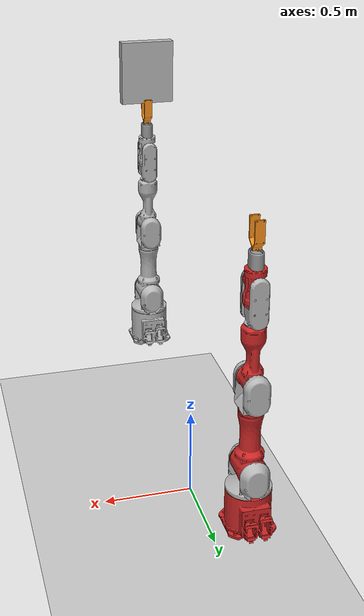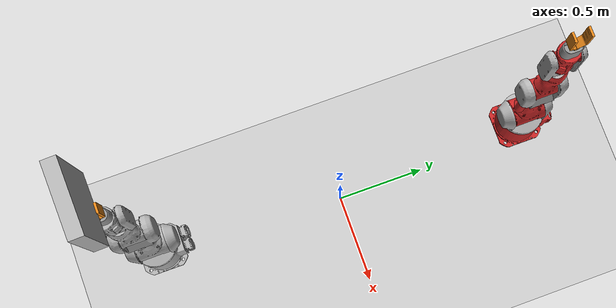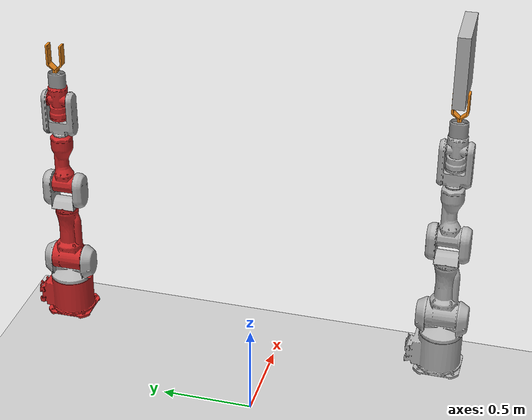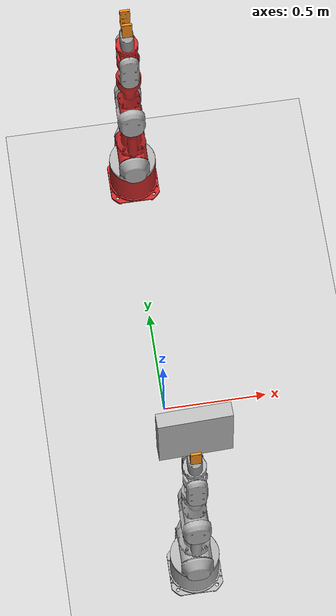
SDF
<sdf version="1.6">
 <world name="default">
  <physics name="default_physics" default="0" type="ode">
   <ode>
    <solver>
     <type>quick</type>
     <iters>20</iters>
     <sor>1</sor>
     <use_dynamic_moi_rescaling>0</use_dynamic_moi_rescaling>
    </solver>
    <constraints>
     <cfm>0</cfm>
     <erp>0.2</erp>
     <contact_max_correcting_vel>100</contact_max_correcting_vel>
     <contact_surface_layer>0</contact_surface_layer>
    </constraints>
   </ode>
   <real_time_update_rate>1000</real_time_update_rate>
   <max_step_size>0.001</max_step_size>
   <real_time_factor>1</real_time_factor>
  </physics>
  <light name="sun" type="directional">
   <pose>0 0 10 0 -0 0</pose>
   <diffuse>0.8 0.8 0.8 1</diffuse>
   <specular>0.2 0.2 0.2 1</specular>
   <attenuation>
    <range>1000</range>
    <constant>0.9</constant>
    <linear>0.01</linear>
    <quadratic>0.001</quadratic>
   </attenuation>
   <direction>-0.5 0.1 -0.9</direction>
  </light>
  <model name="ground_plane">
   <static>1</static>
   <link name="link">
    <collision name="collision">
     <geometry><plane><normal>0 0 1</normal><size>100 100</size></plane></geometry>
     <surface><friction><ode><mu>100</mu><mu2>50</mu2></ode></friction></surface>
    </collision>
    <visual name="visual">
     <cast_shadows>0</cast_shadows>
     <geometry><plane><normal>0 0 1</normal><size>100 100</size></plane></geometry>
     <material>
      <script><uri>file://media/materials/scripts/gazebo.material</uri><name>Gazebo/Grey</name></script>
     </material>
    </visual>
   </link>
  </model>
  <gravity>0 0 -9.81</gravity>
  <magnetic_field>6e-06 2.3e-05 -4.2e-05</magnetic_field>
  <atmosphere type="adiabatic"/>
  <scene><ambient>0.4 0.4 0.4 1</ambient><background>0.7 0.7 0.7 1</background><shadows>1</shadows></scene>
  <audio><device>default</device></audio>
  <spherical_coordinates>
   <surface_model>EARTH_WGS84</surface_model>
   <latitude_deg>0</latitude_deg>
   <longitude_deg>0</longitude_deg>
   <elevation>0</elevation>
   <heading_deg>0</heading_deg>
  </spherical_coordinates>
  <model name="pa10">
   <link name="pa10_1_root_link">
    <pose>0 -1 0 0 -0 0</pose>
    <inertial>
     <pose>0 0 0.025 0 -0 0</pose>
     <mass>2</mass>
     <inertia><ixx>1.00667</ixx><ixy>0</ixy><ixz>0</ixz><iyy>1.00667</iyy><iyz>0</iyz><izz>1.0025</izz></inertia>
    </inertial>
    <collision name="pa10_1_root_link_fixed_joint_lump__pa10_1_base_link_collision">
     <pose>0 0 0 0 -0 3.14</pose>
     <geometry>
      <mesh>
       <scale>1 1 1</scale>
       <uri>/home/michalis/iros_2020_ws/src/PA10/pa10_description/pa10_stl_collision/S1_collision.stl</uri>
      </mesh>
     </geometry>
     <surface><friction><ode><mu>0.5</mu><mu2>0.5</mu2></ode></friction></surface>
    </collision>
    <visual name="pa10_1_root_link_fixed_joint_lump__pa10_1_base_link_visual">
     <pose>0 0 0 0 -0 3.14</pose>
     <geometry>
      <mesh>
       <scale>1 1 1</scale>
       <uri>/home/michalis/iros_2020_ws/src/PA10/pa10_description/pa10_stl/S1.stl</uri>
      </mesh>
     </geometry>
     <material>
      <ambient>0.55 0.85 0.89 1</ambient>
      <diffuse>0.7 0.7 0.7 1</diffuse>
      <specular>0.01 0.01 0.01 1</specular>
      <script><uri>__default__</uri><name>__default__</name></script>
     </material>
    </visual>
   </link>
   <joint name="pa10_1_base_to_root" type="fixed"><child>pa10_1_root_link</child><parent>world</parent></joint>
   <link name="pa10_1_link_shoulder_1">
    <pose>0 -1 0.2 0 -0 0</pose>
    <inertial>
     <pose>0 0 0.117 0 -0 0</pose>
     <mass>0.5</mass>
     <inertia>
      <ixx>0.00139944</ixx>
      <ixy>0</ixy>
      <ixz>0</ixz>
      <iyy>0.00139944</iyy>
      <iyz>0</iyz>
      <izz>0.0016</izz>
     </inertia>
    </inertial>
    <collision name="pa10_1_link_shoulder_1_collision">
     <pose>0 0 0.117 0 -0 0</pose>
     <geometry>
      <mesh>
       <scale>1 1 1</scale>
       <uri>/home/michalis/iros_2020_ws/src/PA10/pa10_description/pa10_stl_collision/S2_collision.stl</uri>
      </mesh>
     </geometry>
    </collision>
    <visual name="pa10_1_link_shoulder_1_visual">
     <pose>0 0 0.117 0 -0 0</pose>
     <geometry>
      <mesh>
       <scale>1 1 1</scale>
       <uri>/home/michalis/iros_2020_ws/src/PA10/pa10_description/pa10_stl/S2.stl</uri>
      </mesh>
     </geometry>
     <material>
      <ambient>0.88 0.88 0.88 1</ambient>
      <diffuse>0.7 0.7 0.7 1</diffuse>
      <specular>0.01 0.01 0.01 1</specular>
      <script><uri>__default__</uri><name>__default__</name></script>
     </material>
    </visual>
   </link>
   <joint name="pa10_1_S1" type="revolute">
    <child>pa10_1_link_shoulder_1</child>
    <parent>pa10_1_root_link</parent>
    <axis>
     <xyz>0 0 1</xyz>
     <limit><lower>-2.96706</lower><upper>2.96706</upper><effort>150</effort><velocity>0.85</velocity></limit>
     <dynamics>
      <damping>0.8</damping>
      <friction>0.1</friction>
      <spring_reference>0</spring_reference>
      <spring_stiffness>0</spring_stiffness>
     </dynamics>
     <use_parent_model_frame>1</use_parent_model_frame>
    </axis>
   </joint>
   <link name="pa10_1_link_shoulder_2">
    <pose>0 -1 0.317 -1.57079 0 0</pose>
    <inertial>
     <pose>0 -0.22 1e-06 -1.57079 -0 3.14159</pose>
     <mass>1</mass>
     <inertia>
      <ixx>0.00266184</ixx>
      <ixy>4.06565e-24</ixy>
      <ixz>-1.48893e-23</ixz>
      <iyy>0.00266183</iyy>
      <iyz>1.53224e-18</iyz>
      <izz>0.001625</izz>
     </inertia>
    </inertial>
    <collision name="pa10_1_link_shoulder_2_collision">
     <pose>0 0 0 -1.57079 -0 3.14159</pose>
     <geometry>
      <mesh>
       <scale>1 1 1</scale>
       <uri>/home/michalis/iros_2020_ws/src/PA10/pa10_description/pa10_stl_collision/S3_collision.stl</uri>
      </mesh>
     </geometry>
     <surface><friction><ode><mu>0.5</mu><mu2>0.5</mu2></ode></friction></surface>
    </collision>
    <visual name="pa10_1_link_shoulder_2_visual">
     <pose>0 0 0 -1.57079 -0 3.14159</pose>
     <geometry>
      <mesh>
       <scale>1 1 1</scale>
       <uri>/home/michalis/iros_2020_ws/src/PA10/pa10_description/pa10_stl/S3.stl</uri>
      </mesh>
     </geometry>
     <material>
      <ambient>0.55 0.85 0.89 1</ambient>
      <diffuse>0.7 0.7 0.7 1</diffuse>
      <specular>0.01 0.01 0.01 1</specular>
      <script><uri>__default__</uri><name>__default__</name></script>
     </material>
    </visual>
   </link>
   <joint name="pa10_1_S2" type="revolute">
    <child>pa10_1_link_shoulder_2</child>
    <parent>pa10_1_link_shoulder_1</parent>
    <axis>
     <xyz>0 1 6e-06</xyz>
     <limit><lower>-1.5708</lower><upper>1.5708</upper><effort>150</effort><velocity>0.85</velocity></limit>
     <dynamics>
      <damping>0.8</damping>
      <friction>0.1</friction>
      <spring_reference>0</spring_reference>
      <spring_stiffness>0</spring_stiffness>
     </dynamics>
     <use_parent_model_frame>1</use_parent_model_frame>
    </axis>
   </joint>
   <link name="pa10_1_link_elbow_1">
    <pose>0 -1 0.634 0 -0 0</pose>
    <inertial>
     <pose>0 0 0.133 0 -0 0</pose>
     <mass>0.5</mass>
     <inertia>
      <ixx>0.00139944</ixx>
      <ixy>0</ixy>
      <ixz>0</ixz>
      <iyy>0.00139944</iyy>
      <iyz>0</iyz>
      <izz>0.0016</izz>
     </inertia>
    </inertial>
    <collision name="pa10_1_link_elbow_1_collision">
     <pose>0 0 0.133 0 -0 0</pose>
     <geometry>
      <mesh>
       <scale>1 1 1</scale>
       <uri>/home/michalis/iros_2020_ws/src/PA10/pa10_description/pa10_stl_collision/E1_collision.stl</uri>
      </mesh>
     </geometry>
     <surface><friction><ode><mu>0.5</mu><mu2>0.5</mu2></ode></friction></surface>
    </collision>
    <visual name="pa10_1_link_elbow_1_visual">
     <pose>0 0 0.133 0 -0 0</pose>
     <geometry>
      <mesh>
       <scale>1 1 1</scale>
       <uri>/home/michalis/iros_2020_ws/src/PA10/pa10_description/pa10_stl/E1.stl</uri>
      </mesh>
     </geometry>
     <material>
      <ambient>0.88 0.88 0.88 1</ambient>
      <diffuse>0.7 0.7 0.7 1</diffuse>
      <specular>0.01 0.01 0.01 1</specular>
      <script><uri>__default__</uri><name>__default__</name></script>
     </material>
    </visual>
   </link>
   <joint name="pa10_1_E1" type="revolute">
    <child>pa10_1_link_elbow_1</child>
    <parent>pa10_1_link_shoulder_2</parent>
    <axis>
     <xyz>0 0 1</xyz>
     <limit><lower>-2.96706</lower><upper>2.96706</upper><effort>150</effort><velocity>1.85</velocity></limit>
     <dynamics>
      <damping>0.8</damping>
      <friction>0.1</friction>
      <spring_reference>0</spring_reference>
      <spring_stiffness>0</spring_stiffness>
     </dynamics>
     <use_parent_model_frame>1</use_parent_model_frame>
    </axis>
   </joint>
   <link name="pa10_1_link_elbow_2">
    <pose>0 -1 0.767 -1.57079 0 0</pose>
    <inertial>
     <pose>0 -0.15 0 1.57079 -0 0</pose>
     <mass>0.5</mass>
     <inertia>
      <ixx>0.0012495</ixx>
      <ixy>0</ixy>
      <ixz>0</ixz>
      <iyy>0.0012495</iyy>
      <iyz>0</iyz>
      <izz>0.000625</izz>
     </inertia>
    </inertial>
    <collision name="pa10_1_link_elbow_2_collision">
     <pose>0 0.003 0 1.57079 -0 0</pose>
     <geometry>
      <mesh>
       <scale>1 1 1</scale>
       <uri>/home/michalis/iros_2020_ws/src/PA10/pa10_description/pa10_stl_collision/E2_collision.stl</uri>
      </mesh>
     </geometry>
     <surface><friction><ode><mu>0.5</mu><mu2>0.5</mu2></ode></friction></surface>
    </collision>
    <visual name="pa10_1_link_elbow_2_visual">
     <pose>0 0.003 0 1.57079 -0 0</pose>
     <geometry>
      <mesh>
       <scale>1 1 1</scale>
       <uri>/home/michalis/iros_2020_ws/src/PA10/pa10_description/pa10_stl/E2.stl</uri>
      </mesh>
     </geometry>
     <material>
      <ambient>0.55 0.85 0.89 1</ambient>
      <diffuse>0.7 0.7 0.7 1</diffuse>
      <specular>0.01 0.01 0.01 1</specular>
      <script><uri>__default__</uri><name>__default__</name></script>
     </material>
    </visual>
   </link>
   <joint name="pa10_1_E2" type="revolute">
    <child>pa10_1_link_elbow_2</child>
    <parent>pa10_1_link_elbow_1</parent>
    <axis>
     <xyz>0 1 6e-06</xyz>
     <limit><lower>-2.26893</lower><upper>2.26893</upper><effort>150</effort><velocity>1.85</velocity></limit>
     <dynamics>
      <damping>0.8</damping>
      <friction>0.1</friction>
      <spring_reference>0</spring_reference>
      <spring_stiffness>0</spring_stiffness>
     </dynamics>
     <use_parent_model_frame>1</use_parent_model_frame>
    </axis>
   </joint>
   <link name="pa10_1_link_wrist_1">
    <pose>0 -1 1.052 0 -0 0</pose>
    <inertial>
     <pose>0 0 0.195 0 -0 0</pose>
     <mass>0.5</mass>
     <inertia>
      <ixx>0.0017368</ixx>
      <ixy>0</ixy>
      <ixz>0</ixz>
      <iyy>0.0017368</iyy>
      <iyz>0</iyz>
      <izz>0.0016</izz>
     </inertia>
    </inertial>
    <collision name="pa10_1_link_wrist_1_collision">
     <pose>0 0 0.195 0 -0 0</pose>
     <geometry>
      <mesh>
       <scale>1 1 1</scale>
       <uri>/home/michalis/iros_2020_ws/src/PA10/pa10_description/pa10_stl_collision/W1_collision.stl</uri>
      </mesh>
     </geometry>
     <surface><friction><ode><mu>0.5</mu><mu2>0.5</mu2></ode></friction></surface>
    </collision>
    <visual name="pa10_1_link_wrist_1_visual">
     <pose>0 0 0.195 0 -0 0</pose>
     <geometry>
      <mesh>
       <scale>1 1 1</scale>
       <uri>/home/michalis/iros_2020_ws/src/PA10/pa10_description/pa10_stl/W1.stl</uri>
      </mesh>
     </geometry>
     <material>
      <ambient>0.88 0.88 0.88 1</ambient>
      <diffuse>0.7 0.7 0.7 1</diffuse>
      <specular>0.01 0.01 0.01 1</specular>
      <script><uri>__default__</uri><name>__default__</name></script>
     </material>
    </visual>
   </link>
   <joint name="pa10_1_W1" type="revolute">
    <child>pa10_1_link_wrist_1</child>
    <parent>pa10_1_link_elbow_2</parent>
    <axis>
     <xyz>0 0 1</xyz>
     <limit><lower>-4.36332</lower><upper>4.36332</upper><effort>150</effort><velocity>1.85</velocity></limit>
     <dynamics>
      <damping>0.8</damping>
      <friction>0.1</friction>
      <spring_reference>0</spring_reference>
      <spring_stiffness>0</spring_stiffness>
     </dynamics>
     <use_parent_model_frame>1</use_parent_model_frame>
    </axis>
   </joint>
   <link name="pa10_1_link_wrist_2">
    <pose>0 -1 1.247 -1.57079 0 0</pose>
    <inertial>
     <pose>0 0 0 1.57079 -0 0</pose>
     <mass>0.5</mass>
     <inertia>
      <ixx>0.000903805</ixx>
      <ixy>0</ixy>
      <ixz>0</ixz>
      <iyy>0.0016</iyy>
      <iyz>0</iyz>
      <izz>0.000903805</izz>
     </inertia>
    </inertial>
    <collision name="pa10_1_link_wrist_2_collision">
     <pose>0 0 0 1.57079 -0 0</pose>
     <geometry>
      <mesh>
       <scale>1 1 1</scale>
       <uri>/home/michalis/iros_2020_ws/src/PA10/pa10_description/pa10_stl_collision/W2_collision.stl</uri>
      </mesh>
     </geometry>
     <surface><friction><ode><mu>0.5</mu><mu2>0.5</mu2></ode></friction></surface>
    </collision>
    <visual name="pa10_1_link_wrist_2_visual">
     <pose>0 0 0 1.57079 -0 0</pose>
     <geometry>
      <mesh>
       <scale>1 1 1</scale>
       <uri>/home/michalis/iros_2020_ws/src/PA10/pa10_description/pa10_stl/W2.stl</uri>
      </mesh>
     </geometry>
     <material>
      <ambient>0.55 0.85 0.89 1</ambient>
      <diffuse>0.7 0.7 0.7 1</diffuse>
      <specular>0.01 0.01 0.01 1</specular>
      <script><uri>__default__</uri><name>__default__</name></script>
     </material>
    </visual>
   </link>
   <joint name="pa10_1_W2" type="revolute">
    <child>pa10_1_link_wrist_2</child>
    <parent>pa10_1_link_wrist_1</parent>
    <axis>
     <xyz>0 1 6e-06</xyz>
     <limit><lower>-2.79253</lower><upper>2.79253</upper><effort>150</effort><velocity>5.65487</velocity></limit>
     <dynamics>
      <damping>0.8</damping>
      <friction>0.1</friction>
      <spring_reference>0</spring_reference>
      <spring_stiffness>0</spring_stiffness>
     </dynamics>
     <use_parent_model_frame>1</use_parent_model_frame>
    </axis>
   </joint>
   <link name="pa10_1_link_wrist_3">
    <pose>0 -1 1.317 0 -0 0</pose>
    <inertial>
     <pose>-0.000109 -3e-06 0.292888 0 -0 0</pose>
     <mass>0.9</mass>
     <inertia>
      <ixx>0.127852</ixx>
      <ixy>-2.39321e-09</ixy>
      <ixz>2.04788e-05</ixz>
      <iyy>0.127852</iyy>
      <iyz>5.69382e-07</iyz>
      <izz>0.10209</izz>
     </inertia>
    </inertial>
    <collision name="pa10_1_link_wrist_3_fixed_joint_lump__common_object_collision">
     <pose>0 0 0.381 1.579 -0 -1.543</pose>
     <geometry><box><size>0.06 0.24 0.25</size></box></geometry>
    </collision>
    <collision name="pa10_1_link_wrist_3_fixed_joint_lump__pa10_1_link_gripper_base_collision_1">
     <geometry>
      <mesh>
       <scale>1 1 1</scale>
       <uri>/home/michalis/iros_2020_ws/src/PA10/pa10_description/gripper_stl/pa10_gripper_base.stl</uri>
      </mesh>
     </geometry>
     <surface><friction><ode><mu>0.5</mu><mu2>0.5</mu2></ode></friction></surface>
    </collision>
    <visual name="pa10_1_link_wrist_3_fixed_joint_lump__common_object_visual">
     <pose>0 0 0.381 1.579 -0 -1.543</pose>
     <geometry><box><size>0.06 0.35 0.3</size></box></geometry>
    </visual>
    <visual name="pa10_1_link_wrist_3_fixed_joint_lump__pa10_1_link_gripper_base_visual_1">
     <geometry>
      <mesh>
       <scale>1 1 1</scale>
       <uri>/home/michalis/iros_2020_ws/src/PA10/pa10_description/gripper_stl/pa10_gripper_base.stl</uri>
      </mesh>
     </geometry>
     <material>
      <script><name>Gazebo/Grey</name><uri>file://media/materials/scripts/gazebo.material</uri></script>
     </material>
    </visual>
   </link>
   <joint name="pa10_1_W3" type="revolute">
    <child>pa10_1_link_wrist_3</child>
    <parent>pa10_1_link_wrist_2</parent>
    <axis>
     <xyz>0 0 1</xyz>
     <limit><lower>-4.36332</lower><upper>4.36332</upper><effort>150</effort><velocity>5.65487</velocity></limit>
     <dynamics>
      <damping>0.8</damping>
      <friction>0.1</friction>
      <spring_reference>0</spring_reference>
      <spring_stiffness>0</spring_stiffness>
     </dynamics>
     <use_parent_model_frame>1</use_parent_model_frame>
    </axis>
   </joint>
   <link name="pa10_1_link_finger_1">
    <pose>0 -1.03 1.472 -1.57079 0 0</pose>
    <inertial>
     <mass>0.1</mass>
     <inertia><ixx>0.01</ixx><ixy>0</ixy><ixz>0</ixz><iyy>0.01</iyy><iyz>0</iyz><izz>0.01</izz></inertia>
    </inertial>
    <collision name="pa10_1_link_finger_1_collision">
     <pose>-0.0225 0.075 -0.01 3.14159 -1.57079 3e-06</pose>
     <geometry>
      <mesh>
       <scale>0.001 0.001 0.001</scale>
       <uri>/home/michalis/iros_2020_ws/src/PA10/pa10_description/gripper_stl/finger.STL</uri>
      </mesh>
     </geometry>
     <surface><friction><ode><mu>1000.5</mu><mu2>1000.5</mu2></ode></friction></surface>
    </collision>
    <visual name="pa10_1_link_finger_1_visual">
     <pose>-0.0225 0.075 -0.01 3.14159 -1.57079 3e-06</pose>
     <geometry>
      <mesh>
       <scale>0.001 0.001 0.001</scale>
       <uri>/home/michalis/iros_2020_ws/src/PA10/pa10_description/gripper_stl/finger.STL</uri>
      </mesh>
     </geometry>
     <material>
      <script><name>Gazebo/Orange</name><uri>file://media/materials/scripts/gazebo.material</uri></script>
     </material>
    </visual>
   </link>
   <joint name="pa10_1_finger_joint_1" type="prismatic">
    <child>pa10_1_link_finger_1</child>
    <parent>pa10_1_link_wrist_3</parent>
    <axis>
     <xyz>0 1 6e-06</xyz>
     <limit><lower>-0.039</lower><upper>0</upper><effort>150</effort><velocity>1</velocity></limit>
     <dynamics>
      <damping>0.8</damping>
      <friction>0.1</friction>
      <spring_reference>0</spring_reference>
      <spring_stiffness>0</spring_stiffness>
     </dynamics>
     <use_parent_model_frame>1</use_parent_model_frame>
    </axis>
   </joint>
   <link name="pa10_1_link_finger_2">
    <pose>0 -0.970002 1.472 1.57079 -0 0</pose>
    <inertial>
     <mass>0.1</mass>
     <inertia><ixx>0.01</ixx><ixy>0</ixy><ixz>0</ixz><iyy>0.01</iyy><iyz>0</iyz><izz>0.01</izz></inertia>
    </inertial>
    <collision name="pa10_1_link_finger_2_collision">
     <pose>-0.0225 -0.075 0.07 3.14159 1.57079 3.14159</pose>
     <geometry>
      <mesh>
       <scale>0.001 0.001 0.001</scale>
       <uri>/home/michalis/iros_2020_ws/src/PA10/pa10_description/gripper_stl/finger_left.STL</uri>
      </mesh>
     </geometry>
     <surface><friction><ode><mu>1000.5</mu><mu2>1000.5</mu2></ode></friction></surface>
    </collision>
    <visual name="pa10_1_link_finger_2_visual">
     <pose>-0.0225 -0.075 0.07 3.14159 1.57079 3.14159</pose>
     <geometry>
      <mesh>
       <scale>0.001 0.001 0.001</scale>
       <uri>/home/michalis/iros_2020_ws/src/PA10/pa10_description/gripper_stl/finger_left.STL</uri>
      </mesh>
     </geometry>
     <material>
      <script><name>Gazebo/Orange</name><uri>file://media/materials/scripts/gazebo.material</uri></script>
     </material>
    </visual>
   </link>
   <joint name="pa10_1_finger_joint_2" type="prismatic">
    <child>pa10_1_link_finger_2</child>
    <parent>pa10_1_link_wrist_3</parent>
    <axis>
     <xyz>0 -1 6e-06</xyz>
     <limit><lower>-0.039</lower><upper>0</upper><effort>150</effort><velocity>1</velocity></limit>
     <dynamics>
      <damping>0.8</damping>
      <friction>0.1</friction>
      <spring_reference>0</spring_reference>
      <spring_stiffness>0</spring_stiffness>
     </dynamics>
     <use_parent_model_frame>1</use_parent_model_frame>
    </axis>
   </joint>
   <link name="pa10_2_root_link">
    <pose>0 1 0 0 -0 0</pose>
    <inertial>
     <pose>0 0 0.025 0 -0 0</pose>
     <mass>2</mass>
     <inertia><ixx>1.00667</ixx><ixy>0</ixy><ixz>0</ixz><iyy>1.00667</iyy><iyz>0</iyz><izz>1.0025</izz></inertia>
    </inertial>
    <collision name="pa10_2_root_link_fixed_joint_lump__pa10_2_base_link_collision">
     <pose>0 0 0 0 -0 3.14</pose>
     <geometry>
      <mesh>
       <scale>1 1 1</scale>
       <uri>/home/michalis/iros_2020_ws/src/PA10/pa10_description/pa10_stl_collision/S1_collision.stl</uri>
      </mesh>
     </geometry>
     <surface><friction><ode><mu>0.5</mu><mu2>0.5</mu2></ode></friction></surface>
    </collision>
    <visual name="pa10_2_root_link_fixed_joint_lump__pa10_2_base_link_visual">
     <pose>0 0 0 0 -0 3.14</pose>
     <geometry>
      <mesh>
       <scale>1 1 1</scale>
       <uri>/home/michalis/iros_2020_ws/src/PA10/pa10_description/pa10_stl/S1.stl</uri>
      </mesh>
     </geometry>
     <material>
      <script><name>Gazebo/Red</name><uri>file://media/materials/scripts/gazebo.material</uri></script>
     </material>
    </visual>
   </link>
   <joint name="pa10_2_base_to_root" type="fixed"><child>pa10_2_root_link</child><parent>world</parent></joint>
   <link name="pa10_2_link_shoulder_1">
    <pose>0 1 0.2 0 -0 0</pose>
    <inertial>
     <pose>0 0 0.117 0 -0 0</pose>
     <mass>0.5</mass>
     <inertia>
      <ixx>0.00139944</ixx>
      <ixy>0</ixy>
      <ixz>0</ixz>
      <iyy>0.00139944</iyy>
      <iyz>0</iyz>
      <izz>0.0016</izz>
     </inertia>
    </inertial>
    <collision name="pa10_2_link_shoulder_1_collision">
     <pose>0 0 0.117 0 -0 0</pose>
     <geometry>
      <mesh>
       <scale>1 1 1</scale>
       <uri>/home/michalis/iros_2020_ws/src/PA10/pa10_description/pa10_stl_collision/S2_collision.stl</uri>
      </mesh>
     </geometry>
    </collision>
    <visual name="pa10_2_link_shoulder_1_visual">
     <pose>0 0 0.117 0 -0 0</pose>
     <geometry>
      <mesh>
       <scale>1 1 1</scale>
       <uri>/home/michalis/iros_2020_ws/src/PA10/pa10_description/pa10_stl/S2.stl</uri>
      </mesh>
     </geometry>
     <material>
      <ambient>0.88 0.88 0.88 1</ambient>
      <diffuse>0.7 0.7 0.7 1</diffuse>
      <specular>0.01 0.01 0.01 1</specular>
      <script><uri>__default__</uri><name>__default__</name></script>
     </material>
    </visual>
   </link>
   <joint name="pa10_2_S1" type="revolute">
    <child>pa10_2_link_shoulder_1</child>
    <parent>pa10_2_root_link</parent>
    <axis>
     <xyz>0 0 1</xyz>
     <limit><lower>-2.96706</lower><upper>2.96706</upper><effort>150</effort><velocity>0.85</velocity></limit>
     <dynamics>
      <damping>0.8</damping>
      <friction>0.1</friction>
      <spring_reference>0</spring_reference>
      <spring_stiffness>0</spring_stiffness>
     </dynamics>
     <use_parent_model_frame>1</use_parent_model_frame>
    </axis>
   </joint>
   <link name="pa10_2_link_shoulder_2">
    <pose>0 1 0.317 -1.57079 0 0</pose>
    <inertial>
     <pose>0 -0.22 1e-06 -1.57079 -0 3.14159</pose>
     <mass>1</mass>
     <inertia>
      <ixx>0.00266184</ixx>
      <ixy>4.06565e-24</ixy>
      <ixz>-1.48893e-23</ixz>
      <iyy>0.00266183</iyy>
      <iyz>1.53224e-18</iyz>
      <izz>0.001625</izz>
     </inertia>
    </inertial>
    <collision name="pa10_2_link_shoulder_2_collision">
     <pose>0 0 0 -1.57079 -0 3.14159</pose>
     <geometry>
      <mesh>
       <scale>1 1 1</scale>
       <uri>/home/michalis/iros_2020_ws/src/PA10/pa10_description/pa10_stl_collision/S3_collision.stl</uri>
      </mesh>
     </geometry>
     <surface><friction><ode><mu>0.5</mu><mu2>0.5</mu2></ode></friction></surface>
    </collision>
    <visual name="pa10_2_link_shoulder_2_visual">
     <pose>0 0 0 -1.57079 -0 3.14159</pose>
     <geometry>
      <mesh>
       <scale>1 1 1</scale>
       <uri>/home/michalis/iros_2020_ws/src/PA10/pa10_description/pa10_stl/S3.stl</uri>
      </mesh>
     </geometry>
     <material>
      <script><name>Gazebo/Red</name><uri>file://media/materials/scripts/gazebo.material</uri></script>
     </material>
    </visual>
   </link>
   <joint name="pa10_2_S2" type="revolute">
    <child>pa10_2_link_shoulder_2</child>
    <parent>pa10_2_link_shoulder_1</parent>
    <axis>
     <xyz>0 1 6e-06</xyz>
     <limit><lower>-1.5708</lower><upper>1.5708</upper><effort>150</effort><velocity>0.85</velocity></limit>
     <dynamics>
      <damping>0.8</damping>
      <friction>0.1</friction>
      <spring_reference>0</spring_reference>
      <spring_stiffness>0</spring_stiffness>
     </dynamics>
     <use_parent_model_frame>1</use_parent_model_frame>
    </axis>
   </joint>
   <link name="pa10_2_link_elbow_1">
    <pose>0 1 0.634 0 -0 0</pose>
    <inertial>
     <pose>0 0 0.133 0 -0 0</pose>
     <mass>0.5</mass>
     <inertia>
      <ixx>0.00139944</ixx>
      <ixy>0</ixy>
      <ixz>0</ixz>
      <iyy>0.00139944</iyy>
      <iyz>0</iyz>
      <izz>0.0016</izz>
     </inertia>
    </inertial>
    <collision name="pa10_2_link_elbow_1_collision">
     <pose>0 0 0.133 0 -0 0</pose>
     <geometry>
      <mesh>
       <scale>1 1 1</scale>
       <uri>/home/michalis/iros_2020_ws/src/PA10/pa10_description/pa10_stl_collision/E1_collision.stl</uri>
      </mesh>
     </geometry>
     <surface><friction><ode><mu>0.5</mu><mu2>0.5</mu2></ode></friction></surface>
    </collision>
    <visual name="pa10_2_link_elbow_1_visual">
     <pose>0 0 0.133 0 -0 0</pose>
     <geometry>
      <mesh>
       <scale>1 1 1</scale>
       <uri>/home/michalis/iros_2020_ws/src/PA10/pa10_description/pa10_stl/E1.stl</uri>
      </mesh>
     </geometry>
     <material>
      <ambient>0.88 0.88 0.88 1</ambient>
      <diffuse>0.7 0.7 0.7 1</diffuse>
      <specular>0.01 0.01 0.01 1</specular>
      <script><uri>__default__</uri><name>__default__</name></script>
     </material>
    </visual>
   </link>
   <joint name="pa10_2_E1" type="revolute">
    <child>pa10_2_link_elbow_1</child>
    <parent>pa10_2_link_shoulder_2</parent>
    <axis>
     <xyz>0 0 1</xyz>
     <limit><lower>-2.96706</lower><upper>2.96706</upper><effort>150</effort><velocity>1.85</velocity></limit>
     <dynamics>
      <damping>0.8</damping>
      <friction>0.1</friction>
      <spring_reference>0</spring_reference>
      <spring_stiffness>0</spring_stiffness>
     </dynamics>
     <use_parent_model_frame>1</use_parent_model_frame>
    </axis>
   </joint>
   <link name="pa10_2_link_elbow_2">
    <pose>0 1 0.767 -1.57079 0 0</pose>
    <inertial>
     <pose>0 -0.15 0 1.57079 -0 0</pose>
     <mass>0.5</mass>
     <inertia>
      <ixx>0.0012495</ixx>
      <ixy>0</ixy>
      <ixz>0</ixz>
      <iyy>0.0012495</iyy>
      <iyz>0</iyz>
      <izz>0.000625</izz>
     </inertia>
    </inertial>
    <collision name="pa10_2_link_elbow_2_collision">
     <pose>0 0.003 0 1.57079 -0 0</pose>
     <geometry>
      <mesh>
       <scale>1 1 1</scale>
       <uri>/home/michalis/iros_2020_ws/src/PA10/pa10_description/pa10_stl_collision/E2_collision.stl</uri>
      </mesh>
     </geometry>
     <surface><friction><ode><mu>0.5</mu><mu2>0.5</mu2></ode></friction></surface>
    </collision>
    <visual name="pa10_2_link_elbow_2_visual">
     <pose>0 0.003 0 1.57079 -0 0</pose>
     <geometry>
      <mesh>
       <scale>1 1 1</scale>
       <uri>/home/michalis/iros_2020_ws/src/PA10/pa10_description/pa10_stl/E2.stl</uri>
      </mesh>
     </geometry>
     <material>
      <script><name>Gazebo/Red</name><uri>file://media/materials/scripts/gazebo.material</uri></script>
     </material>
    </visual>
   </link>
   <joint name="pa10_2_E2" type="revolute">
    <child>pa10_2_link_elbow_2</child>
    <parent>pa10_2_link_elbow_1</parent>
    <axis>
     <xyz>0 1 6e-06</xyz>
     <limit><lower>-2.26893</lower><upper>2.26893</upper><effort>150</effort><velocity>1.85</velocity></limit>
     <dynamics>
      <damping>0.8</damping>
      <friction>0.1</friction>
      <spring_reference>0</spring_reference>
      <spring_stiffness>0</spring_stiffness>
     </dynamics>
     <use_parent_model_frame>1</use_parent_model_frame>
    </axis>
   </joint>
   <link name="pa10_2_link_wrist_1">
    <pose>0 0.999998 1.052 0 -0 0</pose>
    <inertial>
     <pose>0 0 0.195 0 -0 0</pose>
     <mass>0.5</mass>
     <inertia>
      <ixx>0.0017368</ixx>
      <ixy>0</ixy>
      <ixz>0</ixz>
      <iyy>0.0017368</iyy>
      <iyz>0</iyz>
      <izz>0.0016</izz>
     </inertia>
    </inertial>
    <collision name="pa10_2_link_wrist_1_collision">
     <pose>0 0 0.195 0 -0 0</pose>
     <geometry>
      <mesh>
       <scale>1 1 1</scale>
       <uri>/home/michalis/iros_2020_ws/src/PA10/pa10_description/pa10_stl_collision/W1_collision.stl</uri>
      </mesh>
     </geometry>
     <surface><friction><ode><mu>0.5</mu><mu2>0.5</mu2></ode></friction></surface>
    </collision>
    <visual name="pa10_2_link_wrist_1_visual">
     <pose>0 0 0.195 0 -0 0</pose>
     <geometry>
      <mesh>
       <scale>1 1 1</scale>
       <uri>/home/michalis/iros_2020_ws/src/PA10/pa10_description/pa10_stl/W1.stl</uri>
      </mesh>
     </geometry>
     <material>
      <ambient>0.88 0.88 0.88 1</ambient>
      <diffuse>0.7 0.7 0.7 1</diffuse>
      <specular>0.01 0.01 0.01 1</specular>
      <script><uri>__default__</uri><name>__default__</name></script>
     </material>
    </visual>
   </link>
   <joint name="pa10_2_W1" type="revolute">
    <child>pa10_2_link_wrist_1</child>
    <parent>pa10_2_link_elbow_2</parent>
    <axis>
     <xyz>0 0 1</xyz>
     <limit><lower>-4.36332</lower><upper>4.36332</upper><effort>150</effort><velocity>1.85</velocity></limit>
     <dynamics>
      <damping>0.8</damping>
      <friction>0.1</friction>
      <spring_reference>0</spring_reference>
      <spring_stiffness>0</spring_stiffness>
     </dynamics>
     <use_parent_model_frame>1</use_parent_model_frame>
    </axis>
   </joint>
   <link name="pa10_2_link_wrist_2">
    <pose>0 0.999998 1.247 -1.57079 0 0</pose>
    <inertial>
     <pose>0 0 0 1.57079 -0 0</pose>
     <mass>0.5</mass>
     <inertia>
      <ixx>0.000903805</ixx>
      <ixy>0</ixy>
      <ixz>0</ixz>
      <iyy>0.0016</iyy>
      <iyz>0</iyz>
      <izz>0.000903805</izz>
     </inertia>
    </inertial>
    <collision name="pa10_2_link_wrist_2_collision">
     <pose>0 0 0 1.57079 -0 0</pose>
     <geometry>
      <mesh>
       <scale>1 1 1</scale>
       <uri>/home/michalis/iros_2020_ws/src/PA10/pa10_description/pa10_stl_collision/W2_collision.stl</uri>
      </mesh>
     </geometry>
     <surface><friction><ode><mu>0.5</mu><mu2>0.5</mu2></ode></friction></surface>
    </collision>
    <visual name="pa10_2_link_wrist_2_visual">
     <pose>0 0 0 1.57079 -0 0</pose>
     <geometry>
      <mesh>
       <scale>1 1 1</scale>
       <uri>/home/michalis/iros_2020_ws/src/PA10/pa10_description/pa10_stl/W2.stl</uri>
      </mesh>
     </geometry>
     <material>
      <script><name>Gazebo/Red</name><uri>file://media/materials/scripts/gazebo.material</uri></script>
     </material>
    </visual>
   </link>
   <joint name="pa10_2_W2" type="revolute">
    <child>pa10_2_link_wrist_2</child>
    <parent>pa10_2_link_wrist_1</parent>
    <axis>
     <xyz>0 1 6e-06</xyz>
     <limit><lower>-2.79253</lower><upper>2.79253</upper><effort>150</effort><velocity>5.65487</velocity></limit>
     <dynamics>
      <damping>0.8</damping>
      <friction>0.1</friction>
      <spring_reference>0</spring_reference>
      <spring_stiffness>0</spring_stiffness>
     </dynamics>
     <use_parent_model_frame>1</use_parent_model_frame>
    </axis>
   </joint>
   <link name="pa10_2_link_wrist_3">
    <pose>0 0.999998 1.317 0 -0 0</pose>
    <inertial>
     <pose>0 0 0.076667 0 -0 0</pose>
     <mass>0.3</mass>
     <inertia>
      <ixx>0.0046133</ixx>
      <ixy>0</ixy>
      <ixz>0</ixz>
      <iyy>0.0046133</iyy>
      <iyz>0</iyz>
      <izz>0.00109</izz>
     </inertia>
    </inertial>
    <collision name="pa10_2_link_wrist_3_fixed_joint_lump__pa10_2_link_gripper_base_collision">
     <geometry>
      <mesh>
       <scale>1 1 1</scale>
       <uri>/home/michalis/iros_2020_ws/src/PA10/pa10_description/gripper_stl/pa10_gripper_base.stl</uri>
      </mesh>
     </geometry>
     <surface><friction><ode><mu>0.5</mu><mu2>0.5</mu2></ode></friction></surface>
    </collision>
    <visual name="pa10_2_link_wrist_3_fixed_joint_lump__pa10_2_link_gripper_base_visual">
     <geometry>
      <mesh>
       <scale>1 1 1</scale>
       <uri>/home/michalis/iros_2020_ws/src/PA10/pa10_description/gripper_stl/pa10_gripper_base.stl</uri>
      </mesh>
     </geometry>
     <material>
      <script><name>Gazebo/Grey</name><uri>file://media/materials/scripts/gazebo.material</uri></script>
     </material>
    </visual>
   </link>
   <joint name="pa10_2_W3" type="revolute">
    <child>pa10_2_link_wrist_3</child>
    <parent>pa10_2_link_wrist_2</parent>
    <axis>
     <xyz>0 0 1</xyz>
     <limit><lower>-4.36332</lower><upper>4.36332</upper><effort>150</effort><velocity>5.65487</velocity></limit>
     <dynamics>
      <damping>0.8</damping>
      <friction>0.1</friction>
      <spring_reference>0</spring_reference>
      <spring_stiffness>0</spring_stiffness>
     </dynamics>
     <use_parent_model_frame>1</use_parent_model_frame>
    </axis>
   </joint>
   <link name="pa10_2_link_finger_1">
    <pose>0 0.969998 1.472 -1.57079 0 0</pose>
    <inertial>
     <mass>0.1</mass>
     <inertia><ixx>0.01</ixx><ixy>0</ixy><ixz>0</ixz><iyy>0.01</iyy><iyz>0</iyz><izz>0.01</izz></inertia>
    </inertial>
    <collision name="pa10_2_link_finger_1_collision">
     <pose>-0.0225 0.075 -0.01 3.14159 -1.57079 3e-06</pose>
     <geometry>
      <mesh>
       <scale>0.001 0.001 0.001</scale>
       <uri>/home/michalis/iros_2020_ws/src/PA10/pa10_description/gripper_stl/finger.STL</uri>
      </mesh>
     </geometry>
     <surface><friction><ode><mu>1000.5</mu><mu2>1000.5</mu2></ode></friction></surface>
    </collision>
    <visual name="pa10_2_link_finger_1_visual">
     <pose>-0.0225 0.075 -0.01 3.14159 -1.57079 3e-06</pose>
     <geometry>
      <mesh>
       <scale>0.001 0.001 0.001</scale>
       <uri>/home/michalis/iros_2020_ws/src/PA10/pa10_description/gripper_stl/finger.STL</uri>
      </mesh>
     </geometry>
     <material>
      <script><name>Gazebo/Orange</name><uri>file://media/materials/scripts/gazebo.material</uri></script>
     </material>
    </visual>
   </link>
   <joint name="pa10_2_finger_joint_1" type="prismatic">
    <child>pa10_2_link_finger_1</child>
    <parent>pa10_2_link_wrist_3</parent>
    <axis>
     <xyz>0 1 6e-06</xyz>
     <limit><lower>-0.039</lower><upper>0</upper><effort>150</effort><velocity>1</velocity></limit>
     <dynamics>
      <damping>0.8</damping>
      <friction>0.1</friction>
      <spring_reference>0</spring_reference>
      <spring_stiffness>0</spring_stiffness>
     </dynamics>
     <use_parent_model_frame>1</use_parent_model_frame>
    </axis>
   </joint>
   <link name="pa10_2_link_finger_2">
    <pose>0 1.03 1.472 1.57079 -0 0</pose>
    <inertial>
     <mass>0.1</mass>
     <inertia><ixx>0.01</ixx><ixy>0</ixy><ixz>0</ixz><iyy>0.01</iyy><iyz>0</iyz><izz>0.01</izz></inertia>
    </inertial>
    <collision name="pa10_2_link_finger_2_collision">
     <pose>-0.0225 -0.075 0.07 3.14159 1.57079 3.14159</pose>
     <geometry>
      <mesh>
       <scale>0.001 0.001 0.001</scale>
       <uri>/home/michalis/iros_2020_ws/src/PA10/pa10_description/gripper_stl/finger_left.STL</uri>
      </mesh>
     </geometry>
     <surface><friction><ode><mu>1000.5</mu><mu2>1000.5</mu2></ode></friction></surface>
    </collision>
    <visual name="pa10_2_link_finger_2_visual">
     <pose>-0.0225 -0.075 0.07 3.14159 1.57079 3.14159</pose>
     <geometry>
      <mesh>
       <scale>0.001 0.001 0.001</scale>
       <uri>/home/michalis/iros_2020_ws/src/PA10/pa10_description/gripper_stl/finger_left.STL</uri>
      </mesh>
     </geometry>
     <material>
      <script><name>Gazebo/Orange</name><uri>file://media/materials/scripts/gazebo.material</uri></script>
     </material>
    </visual>
   </link>
   <joint name="pa10_2_finger_joint_2" type="prismatic">
    <child>pa10_2_link_finger_2</child>
    <parent>pa10_2_link_wrist_3</parent>
    <axis>
     <xyz>0 -1 6e-06</xyz>
     <limit><lower>-0.039</lower><upper>0</upper><effort>150</effort><velocity>1</velocity></limit>
     <dynamics>
      <damping>0.8</damping>
      <friction>0.1</friction>
      <spring_reference>0</spring_reference>
      <spring_stiffness>0</spring_stiffness>
     </dynamics>
     <use_parent_model_frame>1</use_parent_model_frame>
    </axis>
   </joint>
   <plugin name="gazebo_ros_control" filename="libgazebo_ros_control.so">
    <robotSimType>gazebo_ros_control/DefaultRobotHWSim</robotSimType>
    <legacyModeNS>1</legacyModeNS>
    <controlPeriod>0.001</controlPeriod>
   </plugin>
   <static>0</static>
   <pose>0 0 0.5 0 -0 0</pose>
  </model>
 </world>
</sdf>
